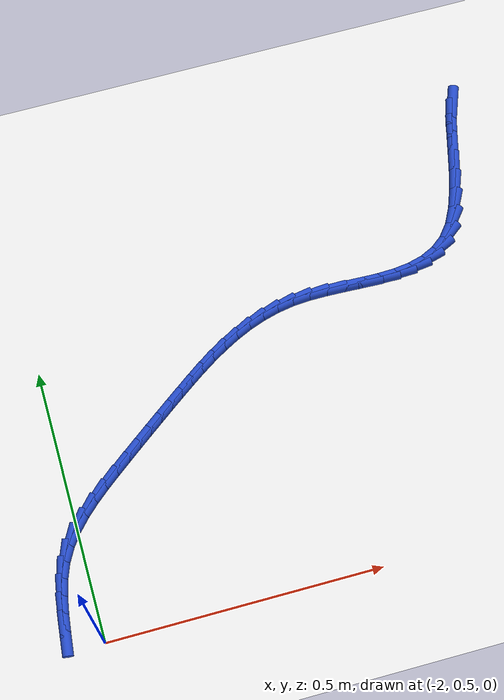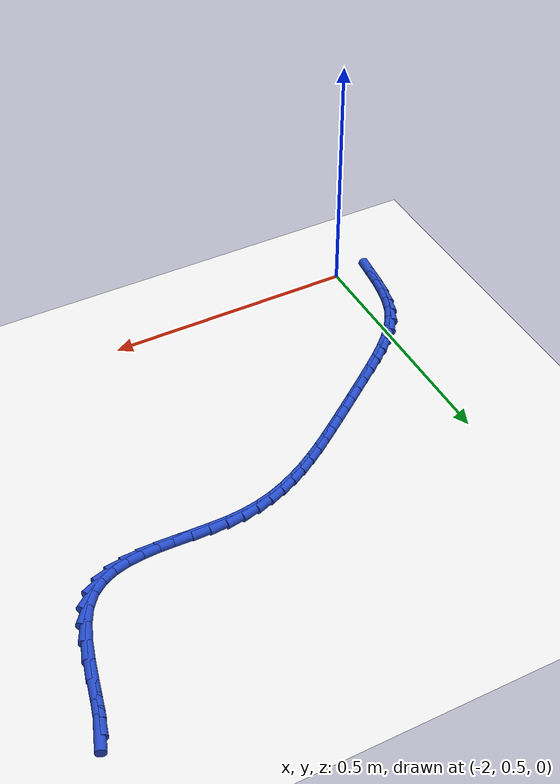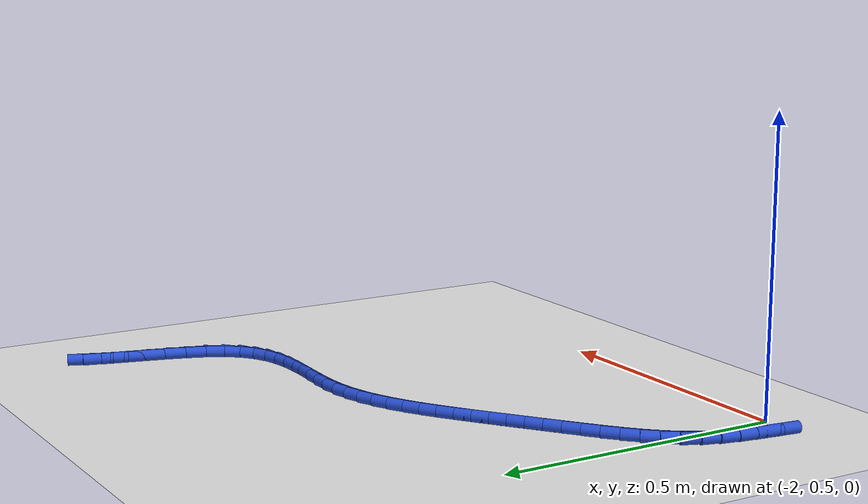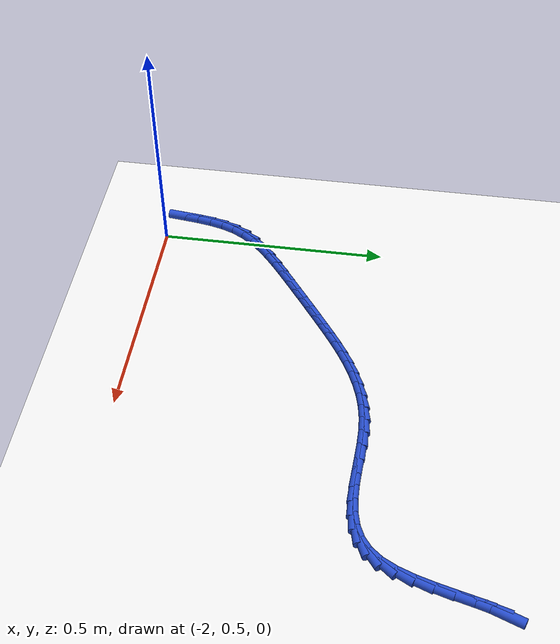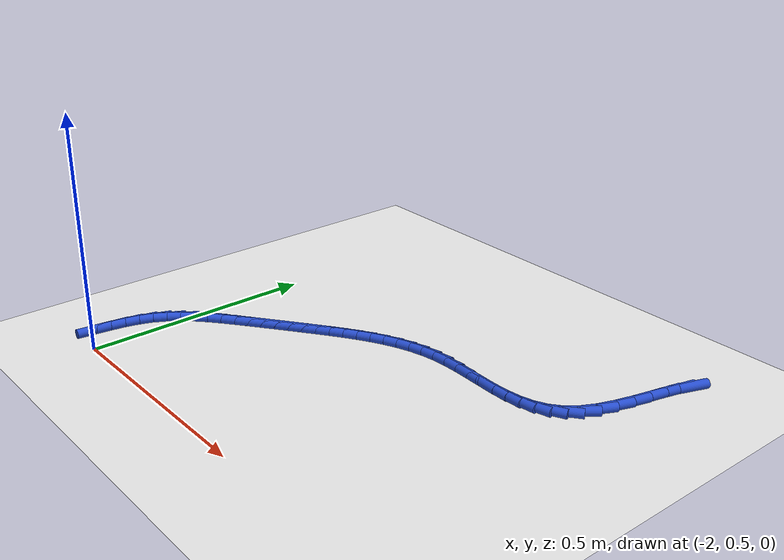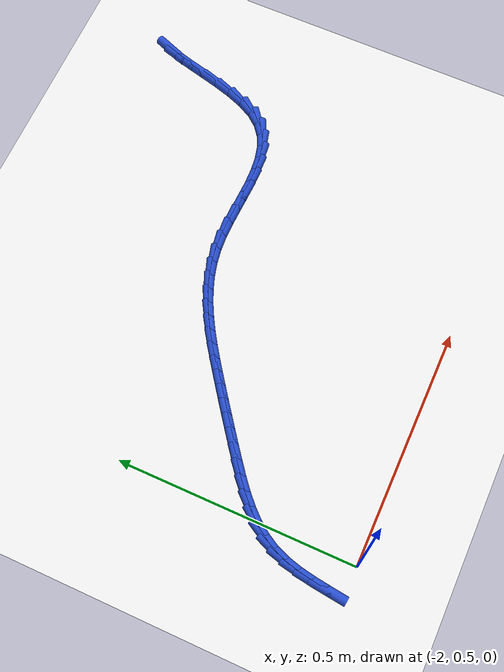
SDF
<sdf version="1.6">
 <world name="default">
  <model name="ground_plane">
   <static>1</static>
   <link name="link">
    <collision name="collision">
     <geometry><plane><normal>0 0 1</normal><size>100 100</size></plane></geometry>
     <surface><friction><ode><mu>100</mu><mu2>50</mu2></ode></friction></surface>
    </collision>
    <visual name="visual">
     <cast_shadows>0</cast_shadows>
     <geometry><plane><normal>0 0 1</normal><size>100 100</size></plane></geometry>
     <material>
      <script><uri>file://media/materials/scripts/gazebo.material</uri><name>Gazebo/WhiteGlow</name></script>
     </material>
    </visual>
   </link>
  </model>
  <model name="line">
   <link name="link_61">
    <pose>-1.1255378866109333 1.3052158997763992 0.01 0 1.57 1.2135944216616026</pose>
    <collision name="collision">
     <geometry><cylinder><radius>0.01</radius><length>0.08</length></cylinder></geometry>
    </collision>
    <visual name="visual">
     <material>
      <script><name>Gazebo/Blue</name><uri>file://media/materials/scripts/gazebo.material</uri></script>
     </material>
     <geometry><cylinder><radius>0.01</radius><length>0.08</length></cylinder></geometry>
    </visual>
   </link>
   <link name="link_62">
    <pose>-1.1347346830041112 1.2805735937095395 0.01 0 1.57 1.301252739196086</pose>
    <collision name="collision">
     <geometry><cylinder><radius>0.01</radius><length>0.08</length></cylinder></geometry>
    </collision>
    <visual name="visual">
     <material>
      <script><name>Gazebo/Blue</name><uri>file://media/materials/scripts/gazebo.material</uri></script>
     </material>
     <geometry><cylinder><radius>0.01</radius><length>0.08</length></cylinder></geometry>
    </visual>
   </link>
   <link name="link_63">
    <pose>-1.1432549375651893 1.2497329217870048 0.01 0 1.57 1.3307952499017193</pose>
    <collision name="collision">
     <geometry><cylinder><radius>0.01</radius><length>0.08</length></cylinder></geometry>
    </collision>
    <visual name="visual">
     <material>
      <script><name>Gazebo/Blue</name><uri>file://media/materials/scripts/gazebo.material</uri></script>
     </material>
     <geometry><cylinder><radius>0.01</radius><length>0.08</length></cylinder></geometry>
    </visual>
   </link>
   <link name="link_64">
    <pose>-1.1518033891603818 1.2148010531009907 0.01 0 1.57 1.3244818228559845</pose>
    <collision name="collision">
     <geometry><cylinder><radius>0.01</radius><length>0.08</length></cylinder></geometry>
    </collision>
    <visual name="visual">
     <material>
      <script><name>Gazebo/Blue</name><uri>file://media/materials/scripts/gazebo.material</uri></script>
     </material>
     <geometry><cylinder><radius>0.01</radius><length>0.08</length></cylinder></geometry>
    </visual>
   </link>
   <link name="link_65">
    <pose>-1.1610847766559025 1.1778851567436937 0.01 0 1.57 1.2873067813841286</pose>
    <collision name="collision">
     <geometry><cylinder><radius>0.01</radius><length>0.08</length></cylinder></geometry>
    </collision>
    <visual name="visual">
     <material>
      <script><name>Gazebo/Blue</name><uri>file://media/materials/scripts/gazebo.material</uri></script>
     </material>
     <geometry><cylinder><radius>0.01</radius><length>0.08</length></cylinder></geometry>
    </visual>
   </link>
   <link name="link_66">
    <pose>-1.171803838917966 1.141092401807309 0.01 0 1.57 1.2145504577317052</pose>
    <collision name="collision">
     <geometry><cylinder><radius>0.01</radius><length>0.08</length></cylinder></geometry>
    </collision>
    <visual name="visual">
     <material>
      <script><name>Gazebo/Blue</name><uri>file://media/materials/scripts/gazebo.material</uri></script>
     </material>
     <geometry><cylinder><radius>0.01</radius><length>0.08</length></cylinder></geometry>
    </visual>
   </link>
   <link name="link_67">
    <pose>-1.1846653148127853 1.106529957384032 0.01 0 1.57 1.0914946060567545</pose>
    <collision name="collision">
     <geometry><cylinder><radius>0.01</radius><length>0.08</length></cylinder></geometry>
    </collision>
    <visual name="visual">
     <material>
      <script><name>Gazebo/Blue</name><uri>file://media/materials/scripts/gazebo.material</uri></script>
     </material>
     <geometry><cylinder><radius>0.01</radius><length>0.08</length></cylinder></geometry>
    </visual>
   </link>
   <link name="link_68">
    <pose>-1.2003739432065752 1.07630499256606 0.01 0 1.57 0.894401758928169</pose>
    <collision name="collision">
     <geometry><cylinder><radius>0.01</radius><length>0.08</length></cylinder></geometry>
    </collision>
    <visual name="visual">
     <material>
      <script><name>Gazebo/Blue</name><uri>file://media/materials/scripts/gazebo.material</uri></script>
     </material>
     <geometry><cylinder><radius>0.01</radius><length>0.08</length></cylinder></geometry>
    </visual>
   </link>
   <link name="link_69">
    <pose>-1.2195786612807185 1.0523803055566108 0.01 0 1.57 0.6548795436853955</pose>
    <collision name="collision">
     <geometry><cylinder><radius>0.01</radius><length>0.08</length></cylinder></geometry>
    </collision>
    <visual name="visual">
     <material>
      <script><name>Gazebo/Blue</name><uri>file://media/materials/scripts/gazebo.material</uri></script>
     </material>
     <geometry><cylinder><radius>0.01</radius><length>0.08</length></cylinder></geometry>
    </visual>
   </link>
   <link name="link_70">
    <pose>-1.2422520066358196 1.0349687042301754 0.01 0 1.57 0.43255327784331943</pose>
    <collision name="collision">
     <geometry><cylinder><radius>0.01</radius><length>0.08</length></cylinder></geometry>
    </collision>
    <visual name="visual">
     <material>
      <script><name>Gazebo/Blue</name><uri>file://media/materials/scripts/gazebo.material</uri></script>
     </material>
     <geometry><cylinder><radius>0.01</radius><length>0.08</length></cylinder></geometry>
    </visual>
   </link>
   <link name="link_71">
    <pose>-1.2679166039188963 1.0231189754595804 0.01 0 1.57 0.252232687854796</pose>
    <collision name="collision">
     <geometry><cylinder><radius>0.01</radius><length>0.08</length></cylinder></geometry>
    </collision>
    <visual name="visual">
     <material>
      <script><name>Gazebo/Blue</name><uri>file://media/materials/scripts/gazebo.material</uri></script>
     </material>
     <geometry><cylinder><radius>0.01</radius><length>0.08</length></cylinder></geometry>
    </visual>
   </link>
   <link name="link_72">
    <pose>-1.2960869474237429 1.0158588711556031 0.01 0 1.57 0.12007728792528266</pose>
    <collision name="collision">
     <geometry><cylinder><radius>0.01</radius><length>0.08</length></cylinder></geometry>
    </collision>
    <visual name="visual">
     <material>
      <script><name>Gazebo/Blue</name><uri>file://media/materials/scripts/gazebo.material</uri></script>
     </material>
     <geometry><cylinder><radius>0.01</radius><length>0.08</length></cylinder></geometry>
    </visual>
   </link>
   <link name="link_73">
    <pose>-1.3262775314441533 1.012216143229021 0.01 0 1.57 0.03143454714573315</pose>
    <collision name="collision">
     <geometry><cylinder><radius>0.01</radius><length>0.08</length></cylinder></geometry>
    </collision>
    <visual name="visual">
     <material>
      <script><name>Gazebo/Blue</name><uri>file://media/materials/scripts/gazebo.material</uri></script>
     </material>
     <geometry><cylinder><radius>0.01</radius><length>0.08</length></cylinder></geometry>
    </visual>
   </link>
   <link name="link_74">
    <pose>-1.358002850273922 1.0112185435906111 0.01 0 1.57 -0.020600895250472435</pose>
    <collision name="collision">
     <geometry><cylinder><radius>0.01</radius><length>0.08</length></cylinder></geometry>
    </collision>
    <visual name="visual">
     <material>
      <script><name>Gazebo/Blue</name><uri>file://media/materials/scripts/gazebo.material</uri></script>
     </material>
     <geometry><cylinder><radius>0.01</radius><length>0.08</length></cylinder></geometry>
    </visual>
   </link>
   <link name="link_75">
    <pose>-1.3907773982068434 1.0118938241511506 0.01 0 1.57 -0.04124785741703648</pose>
    <collision name="collision">
     <geometry><cylinder><radius>0.01</radius><length>0.08</length></cylinder></geometry>
    </collision>
    <visual name="visual">
     <material>
      <script><name>Gazebo/Blue</name><uri>file://media/materials/scripts/gazebo.material</uri></script>
     </material>
     <geometry><cylinder><radius>0.01</radius><length>0.08</length></cylinder></geometry>
    </visual>
   </link>
   <link name="link_76">
    <pose>-1.4241156695367105 1.0132697368214176 0.01 0 1.57 -0.03303443889784161</pose>
    <collision name="collision">
     <geometry><cylinder><radius>0.01</radius><length>0.08</length></cylinder></geometry>
    </collision>
    <visual name="visual">
     <material>
      <script><name>Gazebo/Blue</name><uri>file://media/materials/scripts/gazebo.material</uri></script>
     </material>
     <geometry><cylinder><radius>0.01</radius><length>0.08</length></cylinder></geometry>
    </visual>
   </link>
   <link name="link_77">
    <pose>-1.4575321585573175 1.0143740335121885 0.01 0 1.57 0.004228110406147609</pose>
    <collision name="collision">
     <geometry><cylinder><radius>0.01</radius><length>0.08</length></cylinder></geometry>
    </collision>
    <visual name="visual">
     <material>
      <script><name>Gazebo/Blue</name><uri>file://media/materials/scripts/gazebo.material</uri></script>
     </material>
     <geometry><cylinder><radius>0.01</radius><length>0.08</length></cylinder></geometry>
    </visual>
   </link>
   <link name="link_78">
    <pose>-1.4905413595624601 1.0142344661342408 0.01 0 1.57 0.0732081177433576</pose>
    <collision name="collision">
     <geometry><cylinder><radius>0.01</radius><length>0.08</length></cylinder></geometry>
    </collision>
    <visual name="visual">
     <material>
      <script><name>Gazebo/Blue</name><uri>file://media/materials/scripts/gazebo.material</uri></script>
     </material>
     <geometry><cylinder><radius>0.01</radius><length>0.08</length></cylinder></geometry>
    </visual>
   </link>
   <link name="link_79">
    <pose>-1.5226578954262924 1.011879065624117 0.01 0 1.57 0.1683773865735783</pose>
    <collision name="collision">
     <geometry><cylinder><radius>0.01</radius><length>0.08</length></cylinder></geometry>
    </collision>
    <visual name="visual">
     <material>
      <script><name>Gazebo/Blue</name><uri>file://media/materials/scripts/gazebo.material</uri></script>
     </material>
     <geometry><cylinder><radius>0.01</radius><length>0.08</length></cylinder></geometry>
    </visual>
   </link>
   <link name="link_80">
    <pose>-1.5535323111296369 1.0066308206324845 0.01 0 1.57 0.2621720130816952</pose>
    <collision name="collision">
     <geometry><cylinder><radius>0.01</radius><length>0.08</length></cylinder></geometry>
    </collision>
    <visual name="visual">
     <material>
      <script><name>Gazebo/Blue</name><uri>file://media/materials/scripts/gazebo.material</uri></script>
     </material>
     <geometry><cylinder><radius>0.01</radius><length>0.08</length></cylinder></geometry>
    </visual>
   </link>
   <link name="link_81">
    <pose>-1.5832088901483836 0.9986671518764343 0.01 0 1.57 0.34722757368648843</pose>
    <collision name="collision">
     <geometry><cylinder><radius>0.01</radius><length>0.08</length></cylinder></geometry>
    </collision>
    <visual name="visual">
     <material>
      <script><name>Gazebo/Blue</name><uri>file://media/materials/scripts/gazebo.material</uri></script>
     </material>
     <geometry><cylinder><radius>0.01</radius><length>0.08</length></cylinder></geometry>
    </visual>
   </link>
   <link name="link_82">
    <pose>-1.6118028019552701 0.9883193062026387 0.01 0 1.57 0.42191705142518693</pose>
    <collision name="collision">
     <geometry><cylinder><radius>0.01</radius><length>0.08</length></cylinder></geometry>
    </collision>
    <visual name="visual">
     <material>
      <script><name>Gazebo/Blue</name><uri>file://media/materials/scripts/gazebo.material</uri></script>
     </material>
     <geometry><cylinder><radius>0.01</radius><length>0.08</length></cylinder></geometry>
    </visual>
   </link>
   <link name="link_83">
    <pose>-1.6394292160230333 0.975918530457772 0.01 0 1.57 0.48537934956308487</pose>
    <collision name="collision">
     <geometry><cylinder><radius>0.01</radius><length>0.08</length></cylinder></geometry>
    </collision>
    <visual name="visual">
     <material>
      <script><name>Gazebo/Blue</name><uri>file://media/materials/scripts/gazebo.material</uri></script>
     </material>
     <geometry><cylinder><radius>0.01</radius><length>0.08</length></cylinder></geometry>
    </visual>
   </link>
   <link name="link_84">
    <pose>-1.6662033018244087 0.9617960714885078 0.01 0 1.57 0.5373282130272169</pose>
    <collision name="collision">
     <geometry><cylinder><radius>0.01</radius><length>0.08</length></cylinder></geometry>
    </collision>
    <visual name="visual">
     <material>
      <script><name>Gazebo/Blue</name><uri>file://media/materials/scripts/gazebo.material</uri></script>
     </material>
     <geometry><cylinder><radius>0.01</radius><length>0.08</length></cylinder></geometry>
    </visual>
   </link>
   <link name="link_85">
    <pose>-1.6922402288321332 0.9462831761415194 0.01 0 1.57 0.5778225813795572</pose>
    <collision name="collision">
     <geometry><cylinder><radius>0.01</radius><length>0.08</length></cylinder></geometry>
    </collision>
    <visual name="visual">
     <material>
      <script><name>Gazebo/Blue</name><uri>file://media/materials/scripts/gazebo.material</uri></script>
     </material>
     <geometry><cylinder><radius>0.01</radius><length>0.08</length></cylinder></geometry>
    </visual>
   </link>
   <link name="link_86">
    <pose>-1.7176551665189446 0.9297110912634801 0.01 0 1.57 0.6070614278158594</pose>
    <collision name="collision">
     <geometry><cylinder><radius>0.01</radius><length>0.08</length></cylinder></geometry>
    </collision>
    <visual name="visual">
     <material>
      <script><name>Gazebo/Blue</name><uri>file://media/materials/scripts/gazebo.material</uri></script>
     </material>
     <geometry><cylinder><radius>0.01</radius><length>0.08</length></cylinder></geometry>
    </visual>
   </link>
   <link name="link_87">
    <pose>-1.7425632843575787 0.9124110637010643 0.01 0 1.57 0.6252272688365254</pose>
    <collision name="collision">
     <geometry><cylinder><radius>0.01</radius><length>0.08</length></cylinder></geometry>
    </collision>
    <visual name="visual">
     <material>
      <script><name>Gazebo/Blue</name><uri>file://media/materials/scripts/gazebo.material</uri></script>
     </material>
     <geometry><cylinder><radius>0.01</radius><length>0.08</length></cylinder></geometry>
    </visual>
   </link>
   <link name="link_88">
    <pose>-1.7670797518207713 0.8947143403009445 0.01 0 1.57 0.6330004233646788</pose>
    <collision name="collision">
     <geometry><cylinder><radius>0.01</radius><length>0.08</length></cylinder></geometry>
    </collision>
    <visual name="visual">
     <material>
      <script><name>Gazebo/Blue</name><uri>file://media/materials/scripts/gazebo.material</uri></script>
     </material>
     <geometry><cylinder><radius>0.01</radius><length>0.08</length></cylinder></geometry>
    </visual>
   </link>
   <link name="link_89">
    <pose>-1.7913186057235786 0.8769298013442343 0.01 0 1.57 0.63695950609854</pose>
    <collision name="collision">
     <geometry><cylinder><radius>0.01</radius><length>0.08</length></cylinder></geometry>
    </collision>
    <visual name="visual">
     <material>
      <script><name>Gazebo/Blue</name><uri>file://media/materials/scripts/gazebo.material</uri></script>
     </material>
     <geometry><cylinder><radius>0.01</radius><length>0.08</length></cylinder></geometry>
    </visual>
   </link>
   <link name="link_90">
    <pose>-1.8153817725474333 0.8591271846286822 0.01 0 1.57 0.6410769788060158</pose>
    <collision name="collision">
     <geometry><cylinder><radius>0.01</radius><length>0.08</length></cylinder></geometry>
    </collision>
    <visual name="visual">
     <material>
      <script><name>Gazebo/Blue</name><uri>file://media/materials/scripts/gazebo.material</uri></script>
     </material>
     <geometry><cylinder><radius>0.01</radius><length>0.08</length></cylinder></geometry>
    </visual>
   </link>
   <link name="link_91">
    <pose>-1.8393638398518704 0.8412313064277195 0.01 0 1.57 0.6453591700584091</pose>
    <collision name="collision">
     <geometry><cylinder><radius>0.01</radius><length>0.08</length></cylinder></geometry>
    </collision>
    <visual name="visual">
     <material>
      <script><name>Gazebo/Blue</name><uri>file://media/materials/scripts/gazebo.material</uri></script>
     </material>
     <geometry><cylinder><radius>0.01</radius><length>0.08</length></cylinder></geometry>
    </visual>
   </link>
   <link name="link_92">
    <pose>-1.8633592925233813 0.8231649555325566 0.01 0 1.57 0.6497523434169948</pose>
    <collision name="collision">
     <geometry><cylinder><radius>0.01</radius><length>0.08</length></cylinder></geometry>
    </collision>
    <visual name="visual">
     <material>
      <script><name>Gazebo/Blue</name><uri>file://media/materials/scripts/gazebo.material</uri></script>
     </material>
     <geometry><cylinder><radius>0.01</radius><length>0.08</length></cylinder></geometry>
    </visual>
   </link>
   <link name="link_93">
    <pose>-1.8874626154484595 0.8048509207344029 0.01 0 1.57 0.6543771963240508</pose>
    <collision name="collision">
     <geometry><cylinder><radius>0.01</radius><length>0.08</length></cylinder></geometry>
    </collision>
    <visual name="visual">
     <material>
      <script><name>Gazebo/Blue</name><uri>file://media/materials/scripts/gazebo.material</uri></script>
     </material>
     <geometry><cylinder><radius>0.01</radius><length>0.08</length></cylinder></geometry>
    </visual>
   </link>
   <link name="link_94">
    <pose>-1.9117618617391452 0.7862101347550746 0.01 0 1.57 0.6673412783075736</pose>
    <collision name="collision">
     <geometry><cylinder><radius>0.01</radius><length>0.08</length></cylinder></geometry>
    </collision>
    <visual name="visual">
     <material>
      <script><name>Gazebo/Blue</name><uri>file://media/materials/scripts/gazebo.material</uri></script>
     </material>
     <geometry><cylinder><radius>0.01</radius><length>0.08</length></cylinder></geometry>
    </visual>
   </link>
   <link name="link_95">
    <pose>-1.9360446744586883 0.7670768385486456 0.01 0 1.57 0.7002120943651621</pose>
    <collision name="collision">
     <geometry><cylinder><radius>0.01</radius><length>0.08</length></cylinder></geometry>
    </collision>
    <visual name="visual">
     <material>
      <script><name>Gazebo/Blue</name><uri>file://media/materials/scripts/gazebo.material</uri></script>
     </material>
     <geometry><cylinder><radius>0.01</radius><length>0.08</length></cylinder></geometry>
    </visual>
   </link>
   <link name="link_96">
    <pose>-1.9596765181603495 0.747163441587581 0.01 0 1.57 0.7548236689149398</pose>
    <collision name="collision">
     <geometry><cylinder><radius>0.01</radius><length>0.08</length></cylinder></geometry>
    </collision>
    <visual name="visual">
     <material>
      <script><name>Gazebo/Blue</name><uri>file://media/materials/scripts/gazebo.material</uri></script>
     </material>
     <geometry><cylinder><radius>0.01</radius><length>0.08</length></cylinder></geometry>
    </visual>
   </link>
   <link name="link_97">
    <pose>-1.9819911844944853 0.7261732132375037 0.01 0 1.57 0.8329675055961363</pose>
    <collision name="collision">
     <geometry><cylinder><radius>0.01</radius><length>0.08</length></cylinder></geometry>
    </collision>
    <visual name="visual">
     <material>
      <script><name>Gazebo/Blue</name><uri>file://media/materials/scripts/gazebo.material</uri></script>
     </material>
     <geometry><cylinder><radius>0.01</radius><length>0.08</length></cylinder></geometry>
    </visual>
   </link>
   <link name="link_98">
    <pose>-2.002322465111456 0.7038094228640378 0.01 0 1.57 0.9365152949788217</pose>
    <collision name="collision">
     <geometry><cylinder><radius>0.01</radius><length>0.08</length></cylinder></geometry>
    </collision>
    <visual name="visual">
     <material>
      <script><name>Gazebo/Blue</name><uri>file://media/materials/scripts/gazebo.material</uri></script>
     </material>
     <geometry><cylinder><radius>0.01</radius><length>0.08</length></cylinder></geometry>
    </visual>
   </link>
   <link name="link_99">
    <pose>-2.020004151661619 0.6797753398328066 0.01 0 1.57 1.0660276713487604</pose>
    <collision name="collision">
     <geometry><cylinder><radius>0.01</radius><length>0.08</length></cylinder></geometry>
    </collision>
    <visual name="visual">
     <material>
      <script><name>Gazebo/Blue</name><uri>file://media/materials/scripts/gazebo.material</uri></script>
     </material>
     <geometry><cylinder><radius>0.01</radius><length>0.08</length></cylinder></geometry>
    </visual>
   </link>
   <link name="link_100">
    <pose>-2.0343700369574504 0.6537742341320402 0.01 0 1.57 1.2086049006799775</pose>
    <collision name="collision">
     <geometry><cylinder><radius>0.01</radius><length>0.08</length></cylinder></geometry>
    </collision>
    <visual name="visual">
     <material>
      <script><name>Gazebo/Blue</name><uri>file://media/materials/scripts/gazebo.material</uri></script>
     </material>
     <geometry><cylinder><radius>0.01</radius><length>0.08</length></cylinder></geometry>
    </visual>
   </link>
   <link name="link_101">
    <pose>-2.0450247957635943 0.6256545010964609 0.01 0 1.57 1.3220332241571846</pose>
    <collision name="collision">
     <geometry><cylinder><radius>0.01</radius><length>0.08</length></cylinder></geometry>
    </collision>
    <visual name="visual">
     <material>
      <script><name>Gazebo/Blue</name><uri>file://media/materials/scripts/gazebo.material</uri></script>
     </material>
     <geometry><cylinder><radius>0.01</radius><length>0.08</length></cylinder></geometry>
    </visual>
   </link>
   <link name="link_102">
    <pose>-2.0526042652515812 0.595816982616909 0.01 0 1.57 1.3989173383751414</pose>
    <collision name="collision">
     <geometry><cylinder><radius>0.01</radius><length>0.08</length></cylinder></geometry>
    </collision>
    <visual name="visual">
     <material>
      <script><name>Gazebo/Blue</name><uri>file://media/materials/scripts/gazebo.material</uri></script>
     </material>
     <geometry><cylinder><radius>0.01</radius><length>0.08</length></cylinder></geometry>
    </visual>
   </link>
   <link name="link_103">
    <pose>-2.0579896086759506 0.5647939543416813 0.01 0 1.57 1.4429351566032484</pose>
    <collision name="collision">
     <geometry><cylinder><radius>0.01</radius><length>0.08</length></cylinder></geometry>
    </collision>
    <visual name="visual">
     <material>
      <script><name>Gazebo/Blue</name><uri>file://media/materials/scripts/gazebo.material</uri></script>
     </material>
     <geometry><cylinder><radius>0.01</radius><length>0.08</length></cylinder></geometry>
    </visual>
   </link>
   <link name="link_104">
    <pose>-2.062061989291243 0.5331176919190744 0.01 0 1.57 1.4567990330792937</pose>
    <collision name="collision">
     <geometry><cylinder><radius>0.01</radius><length>0.08</length></cylinder></geometry>
    </collision>
    <visual name="visual">
     <material>
      <script><name>Gazebo/Blue</name><uri>file://media/materials/scripts/gazebo.material</uri></script>
     </material>
     <geometry><cylinder><radius>0.01</radius><length>0.08</length></cylinder></geometry>
    </visual>
   </link>
  </model>
 </world>
</sdf>
